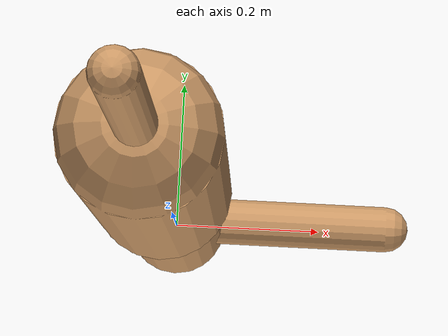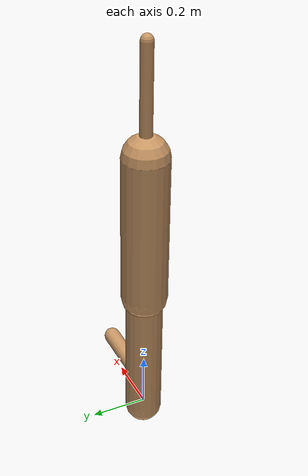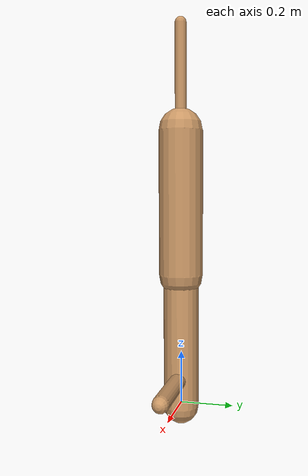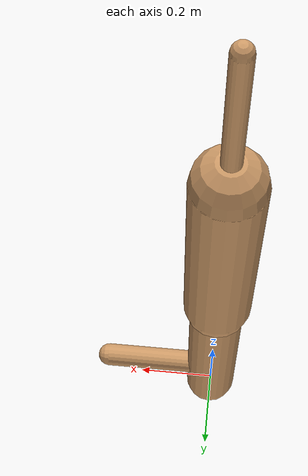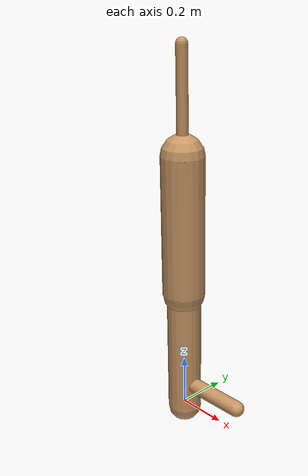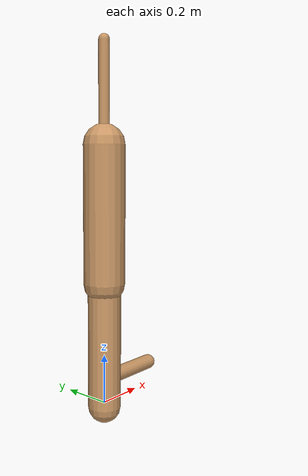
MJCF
<mujoco model="walker2d">
  <compiler angle="degree" coordinate="global" inertiafromgeom="true" />
  <default>
    <joint armature="0.01" damping=".1" limited="true" />
    <geom conaffinity="0" condim="3" contype="1" density="1000" friction="0.8 .1 .1" rgba="0.8 0.6 .4 1" />
  </default>
  <option integrator="RK4" timestep="0.002" />
  <worldbody>

    <body name="torso" pos="0 0 0.21520668937027632">
      <joint armature="0" axis="1 0 0" damping="0" limited="false" name="ignorex" pos="0 0 0" stiffness="0" type="slide" />
      <joint armature="0" axis="0 0 1" damping="0" limited="false" name="ignorez" pos="0 0 0" ref="1.25" stiffness="0" type="slide" />
      <joint armature="0" axis="0 1 0" damping="0" limited="false" name="ignorey" pos="0 0 0" stiffness="0" type="hinge" />
      <geom fromto="0 0 1.45 0 0 1.05" name="torso_geom" size="0.022254659148673746" type="capsule" />
      <body name="thigh">
        <joint axis="0 -1 0" name="thigh_joint" pos="0 0 1.05" range="-150 0" type="hinge" />
        <geom fromto="0.0 0.0 1.05 0.0 0.0 0.49805998924565853" name="thigh_geom" size="0.08401996134221427" type="capsule" />
        <body name="leg" pos="0.0 0.0 -0.10194001075434145">
          <joint axis="0 -1 0" name="leg_joint" pos="0 0 0.6" range="-150 0" type="hinge" />
          <geom fromto="0.0 0.0 0.6 0.0 0.0 -0.01326667861593489" name="leg_geom" size="0.06721596907377142" type="capsule" />
          <body name="foot" pos="0.0 0.0 -0.1132666786159349">
            <joint axis="0 -1 0" name="foot_joint" pos="0 0 0.1" range="-45 45" type="hinge" />
            <geom fromto="-0.0 0.0 0.1 0.29015225536076594 0.0 0.1" name="foot_geom" size="0.030959079258260854" type="capsule" />
          </body>
        </body>
      </body>

      <body name="thigh_left">
        <joint axis="0 -1 0" name="thigh_left_joint" pos="0 0 1.05" range="-150 0" type="hinge" />
        <geom fromto="0.0 0.0 1.05 0.0 0.0 0.49805998924565853" name="thigh_left_geom" rgba=".7 .3 .6 1" size="0.08401996134221427" type="capsule" />
        <body name="leg_left" pos="0.0 0.0 -0.10194001075434145">
          <joint axis="0 -1 0" name="leg_left_joint" pos="0 0 0.6" range="-150 0" type="hinge" />
          <geom fromto="0.0 0.0 0.6 0.0 0.0 -0.01326667861593489" name="leg_left_geom" rgba=".7 .3 .6 1" size="0.06721596907377142" type="capsule" />
          <body name="foot_left" pos="0.0 0.0 -0.1132666786159349">
            <joint axis="0 -1 0" name="foot_left_joint" pos="0 0 0.1" range="-45 45" type="hinge" />
            <geom fromto="-0.0 0.0 0.1 0.29015225536076594 0.0 0.1" name="foot_left_geom" rgba=".7 .3 .6 1" size="0.030959079258260854" type="capsule" />
          </body>
        </body>
      </body>
    </body>
  </worldbody>
  <actuator>

    <motor ctrllimited="true" ctrlrange="-1.0 1.0" gear="100" joint="thigh_joint" />
    <motor ctrllimited="true" ctrlrange="-1.0 1.0" gear="100" joint="leg_joint" />
    <motor ctrllimited="true" ctrlrange="-1.0 1.0" gear="100" joint="foot_joint" />
    <motor ctrllimited="true" ctrlrange="-1.0 1.0" gear="100" joint="thigh_left_joint" />
    <motor ctrllimited="true" ctrlrange="-1.0 1.0" gear="100" joint="leg_left_joint" />
    <motor ctrllimited="true" ctrlrange="-1.0 1.0" gear="100" joint="foot_left_joint" />

  </actuator>
</mujoco>
